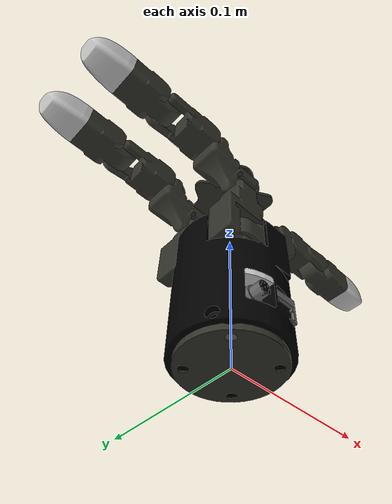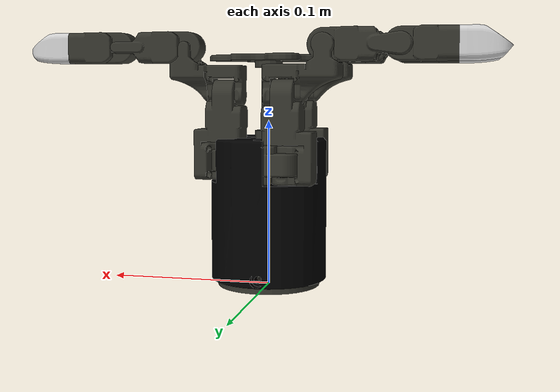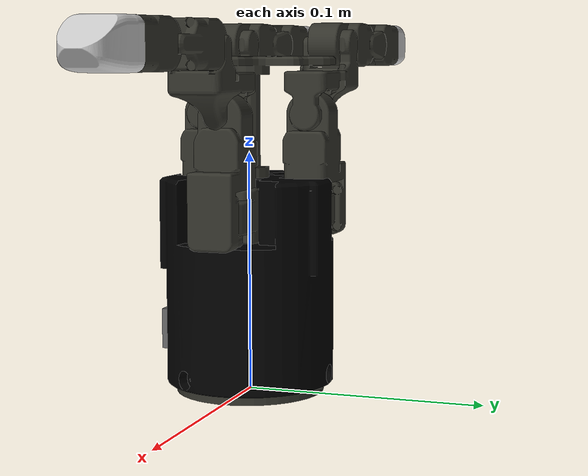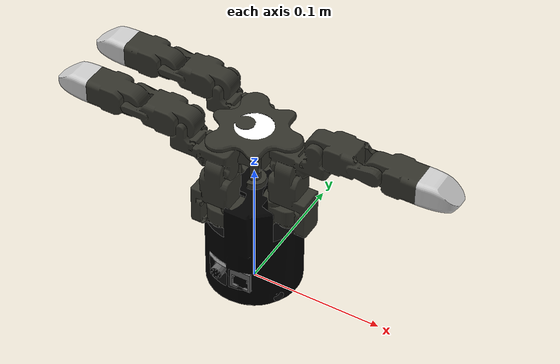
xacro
<?xml version="1.0" ?>
<!--
    dg3f_m.urdf
    Licensed under the BSD-3-Clause
    Copyright (c) 2019-2025 Tesollo Inc.
    See LICENSE file for details.

    Reference:
    * https://tesollo.com/dg-3f/
-->

<robot name="dg3f_m">

  <link name="base_link" />

  <joint name="base_joint" type="fixed">
    <origin xyz="0 0 0" rpy="0 0 0" />
    <parent link="base_link" />
    <child link="l_dg_mount" />
  </joint>

  <link name="l_dg_mount">
    <inertial>
      <mass value="0.035" />
    </inertial>
    <visual>
      <geometry>
        <mesh filename="file://$(find dg_description)/meshes/dg3f_m/visual/l_dg_mount.dae"/>
      </geometry>
    </visual>
    <collision>
      <geometry>
        <mesh filename="file://$(find dg_description)/meshes/dg3f_m/collision/l_dg_mount_c.STL"/>
      </geometry>
    </collision>
  </link>
  <link name="l_dg_base">
    <inertial>
      <origin xyz="0.00043337 0.00027389 0.044909" rpy="0 0 0" />
      <mass value="0.451" />
      <inertia ixx="0.00074905" ixy="1.3406E-06" ixz="6.2559E-06" iyy="0.00076541" iyz="3.8906E-06" izz="0.00042544" />
    </inertial>
    <visual>
      <origin xyz="0 0 0" rpy="0 0 0" />
      <geometry>
        <mesh filename="file://$(find dg_description)/meshes/dg3f_m/visual/l_dg_base.dae" />
      </geometry>
    </visual>
    <collision>
      <origin xyz="0 0 0" rpy="0 0 0" />
      <geometry>
        <mesh filename="file://$(find dg_description)/meshes/dg3f_m/collision/l_dg_base_c.STL" />
      </geometry>
    </collision>
  </link>
  <joint name="j_dg_dg_base" type="fixed">
    <parent link="l_dg_mount"/>
    <child link="l_dg_base"/>
    <origin rpy="0 0 0" xyz="0 0 0.004"/>
  </joint>
<!--finger1-->
<link name="l_dg_1_1">
    <inertial>
      <origin xyz="0.0039774 -8.829E-09 0.020057" rpy="0 0 0" />
      <mass value="0.0493" />
      <inertia ixx="1.3247E-05" ixy="1.7768E-12" ixz="2.91E-06" iyy="1.5031E-05" iyz="-6.8008E-12" izz="4.5216E-06" />
    </inertial>
    <visual>
      <origin xyz="0 0 0" rpy="0 0 0" />
      <geometry>
        <mesh filename="file://$(find dg_description)/meshes/dg3f_m/visual/l_1_1.dae" />
      </geometry>
    </visual>
    <collision>
      <origin xyz="0 0 0" rpy="0 0 0" />
      <geometry>
        <mesh filename="file://$(find dg_description)/meshes/dg3f_m/collision/l_1_1_c.STL" />
      </geometry>
    </collision>
  </link>
  <joint name="j_dg_1_1" type="revolute">
    <origin xyz="0.026558 0 0.0712" rpy="0 0 0" />
    <parent link="l_dg_base" />
    <child link="l_dg_1_1" />
    <axis xyz="0 0 1" />
    <limit lower="-1.5707963267948966" upper="1.5707963267948966" effort="7.644" velocity="3.141592653589793" />
  </joint>

  <link name="l_dg_1_2">
    <inertial>
      <origin xyz="0.013085 -0.00032847 0.013274" rpy="0 0 0" />
      <mass value="0.0191" />
      <inertia ixx="2.4921E-06" ixy="1.1229E-07" ixz="-1.0064E-06" iyy="6.5468E-06" iyz="1.5916E-07" izz="6.2269E-06" />
    </inertial>
    <visual>
      <origin xyz="0 0 0" rpy="0 0 0" />
      <geometry>
        <mesh filename="file://$(find dg_description)/meshes/dg3f_m/visual/l_1_2.dae" />
      </geometry>
    </visual>
    <collision>
      <origin xyz="0 0 0" rpy="0 0 0" />
      <geometry>
        <mesh filename="file://$(find dg_description)/meshes/dg3f_m/collision/l_1_2_c.STL" />
      </geometry>
    </collision>
  </link>
  <joint name="j_dg_1_2" type="revolute">
    <origin xyz="0 0 0.0405" rpy="0 0 0" />
    <parent link="l_dg_1_1" />
    <child link="l_dg_1_2" />
    <axis xyz="1 0 0" />
    <limit lower="-1.5707963267948966" upper="1.5707963267948966" effort="7.644" velocity="3.141592653589793" />
  </joint>

  <link name="l_dg_1_3">
    <inertial>
      <origin xyz="0.015926 -0.0001838 -1.5688E-05" rpy="0 0 0" />
      <mass value="0.04535" />
      <inertia ixx="2.7201E-06" ixy="5.68E-07" ixz="1.3288E-08" iyy="7.7224E-06" iyz="-3.8255E-11" izz="8.3935E-06" />
    </inertial>
    <visual>
      <origin xyz="0 0 0" rpy="0 0 0" />
      <geometry>
        <mesh filename="file://$(find dg_description)/meshes/dg3f_m/visual/l_1_3.dae" />
      </geometry>
    </visual>
    <collision>
      <origin xyz="0 0 0" rpy="0 0 0" />
      <geometry>
        <mesh filename="file://$(find dg_description)/meshes/dg3f_m/collision/l_1_3_c.STL" />
      </geometry>
    </collision>
  </link>
  <joint name="j_dg_1_3" type="revolute">
    <origin xyz="0.0242 0 0.029" rpy="0 0 0" />
    <parent link="l_dg_1_2" />
    <child link="l_dg_1_3" />
    <axis xyz="0 -1 0" />
    <limit lower="-0.0" upper="2.8099800957108707" effort="7.644" velocity="3.141592653589793" />
  </joint>

  <link name="l_dg_1_4">
    <inertial>
      <origin xyz="0.013887 0.00026201 -4.6519E-10" rpy="0 0 0" />
      <mass value="0.0408" />
      <inertia ixx="2.3785E-06" ixy="7.7437E-08" ixz="-4.9155E-14" iyy="3.5656E-06" iyz="1.1628E-12" izz="3.8056E-06" />
    </inertial>
    <visual>
      <origin xyz="0 0 0" rpy="0 0 0" />
      <geometry>
        <mesh filename="file://$(find dg_description)/meshes/dg3f_m/visual/l_1_4.dae" />
      </geometry>
    </visual>
    <collision>
      <origin xyz="0 0 0" rpy="0 0 0" />
      <geometry>
        <mesh filename="file://$(find dg_description)/meshes/dg3f_m/collision/l_1_4_c.STL" />
      </geometry>
    </collision>
  </link>
  <joint name="j_dg_1_4" type="revolute">
    <origin xyz="0.0434 0 0" rpy="0 0 0" />
    <parent link="l_dg_1_3" />
    <child link="l_dg_1_4" />
    <axis xyz="0 -1 0" />
    <limit lower="-1.5707963267948966" upper="1.8675022996339325" effort="7.644" velocity="3.141592653589793" />
  </joint>

  <link name="l_dg_1_tip">
    <inertial>
      <origin xyz="0.010984 -8.1442E-09 -0.00048894" rpy="0 0 0" />
      <mass value="0.0172" />
      <inertia ixx="1.1855E-06" ixy="5.5892E-12" ixz="9.3654E-08" iyy="1.439E-06" iyz="-1.6025E-11" izz="1.6355E-06" />
    </inertial>
    <visual>
      <origin xyz="0 0 0" rpy="0 0 0" />
      <geometry>
        <mesh filename="file://$(find dg_description)/meshes/dg3f_m/visual/l_1_tip.dae" />
      </geometry>
    </visual>
    <collision>
      <origin xyz="0 0 0" rpy="0 0 0" />
      <geometry>
        <mesh filename="file://$(find dg_description)/meshes/dg3f_m/collision/l_1_tip_c.STL" />
      </geometry>
    </collision>
  </link>
  <joint name="j_dg_1_tip" type="fixed">
    <origin xyz="0.0313 0 0" rpy="0 0 0" />
    <parent link="l_dg_1_4" />
    <child link="l_dg_1_tip" />
  </joint>
  <!--finger2-->
  <link name="l_dg_2_1">
    <inertial>
      <origin xyz="-0.0039774 8.829E-09 0.020057" rpy="0 0 0" />
      <mass value="0.0493" />
      <inertia ixx="1.3247E-05" ixy="1.7768E-12" ixz="-2.91E-06" iyy="1.5031E-05" iyz="6.8008E-12" izz="4.5216E-06" />
    </inertial>
    <visual>
      <origin xyz="0 0 0" rpy="0 0 0" />
      <geometry>
        <mesh filename="file://$(find dg_description)/meshes/dg3f_m/visual/l_23_1.dae" />
      </geometry>
    </visual>
    <collision>
      <origin xyz="0 0 0" rpy="0 0 0" />
      <geometry>
        <mesh filename="file://$(find dg_description)/meshes/dg3f_m/collision/l_23_1_c.STL" />
      </geometry>
    </collision>
  </link>
  <joint name="j_dg_2_1" type="revolute">
    <origin xyz="-0.013279 0.023 0.0712" rpy="0 0 0" />
    <parent link="l_dg_base" />
    <child link="l_dg_2_1" />
    <axis xyz="0 0 1" />
    <limit lower="-2.129301687433082" upper="1.5707963267948966" effort="7.644" velocity="3.141592653589793" />
  </joint>

  <link name="l_dg_2_2">
    <inertial>
      <origin xyz="-0.013085 0.00032847 0.013274" rpy="0 0 0" />
      <mass value="0.0191" />
      <inertia ixx="2.4921E-06" ixy="1.1229E-07" ixz="1.0064E-06" iyy="6.5468E-06" iyz="-1.5916E-07" izz="6.2269E-06" />
    </inertial>
    <visual>
      <origin xyz="0 0 0" rpy="0 0 0" />
      <geometry>
        <mesh filename="file://$(find dg_description)/meshes/dg3f_m/visual/l_23_2.dae" />
      </geometry>
    </visual>
    <collision>
      <origin xyz="0 0 0" rpy="0 0 0" />
      <geometry>
        <mesh filename="file://$(find dg_description)/meshes/dg3f_m/collision/l_23_2_c.STL" />
      </geometry>
    </collision>
  </link>
  <joint name="j_dg_2_2" type="revolute">
    <origin xyz="0 0 0.0405" rpy="0 0 0" />
    <parent link="l_dg_2_1" />
    <child link="l_dg_2_2" />
    <axis xyz="-1 0 0" />
    <limit lower="-1.5707963267948966" upper="1.5707963267948966" effort="7.644" velocity="3.141592653589793" />
  </joint>

  <link name="l_dg_2_3">
    <inertial>
      <origin xyz="-0.0159258962872331 0.000183796044363631 -1.56883420763254E-05" rpy="0 0 0" />
      <mass value="0.04535" />
      <inertia ixx="2.72014634088682E-06" ixy="5.67998480575708E-07" ixz="-1.32884157040829E-08" iyy="7.72244376203872E-06" iyz="3.82553595666275E-11" izz="8.39345564298784E-06" />
    </inertial>
    <visual>
      <origin xyz="0 0 0" rpy="0 0 0" />
      <geometry>
        <mesh filename="file://$(find dg_description)/meshes/dg3f_m/visual/l_23_3.dae" />
      </geometry>
    </visual>
    <collision>
      <origin xyz="0 0 0" rpy="0 0 0" />
      <geometry>
        <mesh filename="file://$(find dg_description)/meshes/dg3f_m/collision/l_23_3_c.STL" />
      </geometry>
    </collision>
  </link>
  <joint name="j_dg_2_3" type="revolute">
    <origin xyz="-0.0242 0 0.029" rpy="0 0 0" />
    <parent link="l_dg_2_2" />
    <child link="l_dg_2_3" />
    <axis xyz="0 1 0" />
    <limit lower="-0.0" upper="2.8099800957108707" effort="7.644" velocity="3.141592653589793" />
  </joint>

  <link name="l_dg_2_4">
    <inertial>
      <origin xyz="-0.013887 -0.00026201 -4.6519E-10" rpy="0 0 0" />
      <mass value="0.0408" />
      <inertia ixx="2.3785E-06" ixy="7.7437E-08" ixz="4.9155E-14" iyy="3.5656E-06" iyz="-1.1628E-12" izz="3.8056E-06" />
    </inertial>
    <visual>
      <origin xyz="0 0 0" rpy="0 0 0" />
      <geometry>
        <mesh filename="file://$(find dg_description)/meshes/dg3f_m/visual/l_23_4.dae" />
      </geometry>
    </visual>
    <collision>
      <origin xyz="0 0 0" rpy="0 0 0" />
      <geometry>
        <mesh filename="file://$(find dg_description)/meshes/dg3f_m/collision/l_23_4_c.STL" />
      </geometry>
    </collision>
  </link>
  <joint name="j_dg_2_4" type="revolute">
    <origin xyz="-0.0434 0 0" rpy="0 0 0" />
    <parent link="l_dg_2_3" />
    <child link="l_dg_2_4" />
    <axis xyz="0 1 0" />
    <limit lower="-1.5707963267948966" upper="1.8675022996339325" effort="7.644" velocity="3.141592653589793" />
  </joint>

  <link name="l_dg_2_tip">
    <inertial>
      <origin xyz="-0.010984 -1.7412E-08 -0.00048893" rpy="0 0 0" />
      <mass value="0.0172" />
      <inertia ixx="1.1855E-06" ixy="-2.6029E-12" ixz="-9.3657E-08" iyy="1.439E-06" iyz="1.8278E-11" izz="1.6355E-06" />
    </inertial>
    <visual>
      <origin xyz="0 0 0" rpy="0 0 0" />
      <geometry>
        <mesh filename="file://$(find dg_description)/meshes/dg3f_m/visual/l_23_tip.dae" />
      </geometry>
    </visual>
    <collision>
      <origin xyz="0 0 0" rpy="0 0 0" />
      <geometry>
        <mesh filename="file://$(find dg_description)/meshes/dg3f_m/collision/l_23_tip_c.STL" />
      </geometry>
    </collision>
  </link>
  <joint name="j_dg_2_tip" type="fixed">
    <origin xyz="-0.0313 0 0" rpy="0 0 0" />
    <parent link="l_dg_2_4" />
    <child link="l_dg_2_tip" />
  </joint>
  <!--finger3-->
  <link name="l_dg_3_1">
    <inertial>
      <origin xyz="-0.0039774 8.829E-09 0.020057" rpy="0 0 0" />
      <mass value="0.0493" />
      <inertia ixx="1.3247E-05" ixy="1.7768E-12" ixz="-2.91E-06" iyy="1.5031E-05" iyz="6.8008E-12" izz="4.5216E-06" />
    </inertial>
    <visual>
      <origin xyz="0 0 0" rpy="0 0 0" />
      <geometry>
        <mesh filename="file://$(find dg_description)/meshes/dg3f_m/visual/l_23_1.dae" />
      </geometry>
    </visual>
    <collision>
      <origin xyz="0 0 0" rpy="0 0 0" />
      <geometry>
        <mesh filename="file://$(find dg_description)/meshes/dg3f_m/collision/l_23_1_c.STL" />
      </geometry>
    </collision>
  </link>
  <joint name="j_dg_3_1" type="revolute">
    <origin xyz="-0.013279 -0.023 0.0712" rpy="0 0 0" />
    <parent link="l_dg_base" />
    <child link="l_dg_3_1" />
    <axis xyz="0 0 1" />
    <limit lower="-1.5707963267948966" upper="2.129301687433082" effort="7.644" velocity="3.141592653589793" />
  </joint>

  <link name="l_dg_3_2">
    <inertial>
      <origin xyz="-0.013085 0.00032847 0.013274" rpy="0 0 0" />
      <mass value="0.0191" />
      <inertia ixx="2.4921E-06" ixy="1.1229E-07" ixz="1.0064E-06" iyy="6.5468E-06" iyz="-1.5916E-07" izz="6.2269E-06" />
    </inertial>
    <visual>
      <origin xyz="0 0 0" rpy="0 0 0" />
      <geometry>
        <mesh filename="file://$(find dg_description)/meshes/dg3f_m/visual/l_23_2.dae" />
      </geometry>
    </visual>
    <collision>
      <origin xyz="0 0 0" rpy="0 0 0" />
      <geometry>
        <mesh filename="file://$(find dg_description)/meshes/dg3f_m/collision/l_23_2_c.STL" />
      </geometry>
    </collision>
  </link>
  <joint name="j_dg_3_2" type="revolute">
    <origin xyz="0 0 0.0405" rpy="0 0 0" />
    <parent link="l_dg_3_1" />
    <child link="l_dg_3_2" />
    <axis xyz="-1 0 0" />
    <limit lower="-1.5707963267948966" upper="1.5707963267948966" effort="7.644" velocity="3.141592653589793" />
  </joint>

  <link name="l_dg_3_3">
    <inertial>
      <origin xyz="-0.0159258962872331 0.000183796044363631 -1.56883420763254E-05" rpy="0 0 0" />
      <mass value="0.04535" />
      <inertia ixx="2.72014634088682E-06" ixy="5.67998480575708E-07" ixz="-1.32884157040829E-08" iyy="7.72244376203872E-06" iyz="3.82553595666275E-11" izz="8.39345564298784E-06" />
    </inertial>
    <visual>
      <origin xyz="0 0 0" rpy="0 0 0" />
      <geometry>
        <mesh filename="file://$(find dg_description)/meshes/dg3f_m/visual/l_23_3.dae" />
      </geometry>
    </visual>
    <collision>
      <origin xyz="0 0 0" rpy="0 0 0" />
      <geometry>
        <mesh filename="file://$(find dg_description)/meshes/dg3f_m/collision/l_23_3_c.STL" />
      </geometry>
    </collision>
  </link>
  <joint name="j_dg_3_3" type="revolute">
    <origin xyz="-0.0242 0 0.029" rpy="0 0 0" />
    <parent link="l_dg_3_2" />
    <child link="l_dg_3_3" />
    <axis xyz="0 1 0" />
    <limit lower="-0.0" upper="2.8099800957108707" effort="7.644" velocity="3.141592653589793" />
  </joint>

  <link name="l_dg_3_4">
    <inertial>
      <origin xyz="-0.013887 -0.00026201 -4.6519E-10" rpy="0 0 0" />
      <mass value="0.0408" />
      <inertia ixx="2.3785E-06" ixy="7.7437E-08" ixz="4.9155E-14" iyy="3.5656E-06" iyz="-1.1628E-12" izz="3.8056E-06" />
    </inertial>
    <visual>
      <origin xyz="0 0 0" rpy="0 0 0" />
      <geometry>
        <mesh filename="file://$(find dg_description)/meshes/dg3f_m/visual/l_23_4.dae" />
      </geometry>
    </visual>
    <collision>
      <origin xyz="0 0 0" rpy="0 0 0" />
      <geometry>
        <mesh filename="file://$(find dg_description)/meshes/dg3f_m/collision/l_23_4_c.STL" />
      </geometry>
    </collision>
  </link>
  <joint name="j_dg_3_4" type="revolute">
    <origin xyz="-0.0434 0 0" rpy="0 0 0" />
    <parent link="l_dg_3_3" />
    <child link="l_dg_3_4" />
    <axis xyz="0 1 0" />
    <limit lower="-1.5707963267948966" upper="1.8675022996339325" effort="7.644" velocity="3.141592653589793" />
  </joint>

  <link name="l_dg_3_tip">
    <inertial>
      <origin xyz="-0.010984 -1.7412E-08 -0.00048893" rpy="0 0 0" />
      <mass value="0.0172" />
      <inertia ixx="1.1855E-06" ixy="-2.6029E-12" ixz="-9.3657E-08" iyy="1.439E-06" iyz="1.8278E-11" izz="1.6355E-06" />
    </inertial>
    <visual>
      <origin xyz="0 0 0" rpy="0 0 0" />
      <geometry>
        <mesh filename="file://$(find dg_description)/meshes/dg3f_m/visual/l_23_tip.dae" />
      </geometry>
    </visual>
    <collision>
      <origin xyz="0 0 0" rpy="0 0 0" />
      <geometry>
        <mesh filename="file://$(find dg_description)/meshes/dg3f_m/collision/l_23_tip_c.STL" />
      </geometry>
    </collision>
  </link>
  <joint name="j_dg_3_tip" type="fixed">
    <origin xyz="-0.0313 0 0" rpy="0 0 0" />
    <parent link="l_dg_3_4" />
    <child link="l_dg_3_tip" />
  </joint>
</robot>
